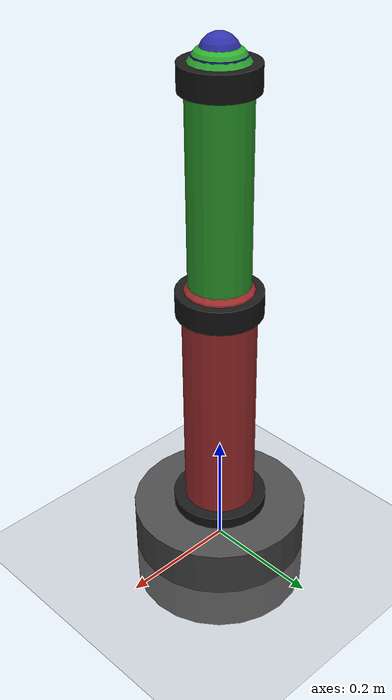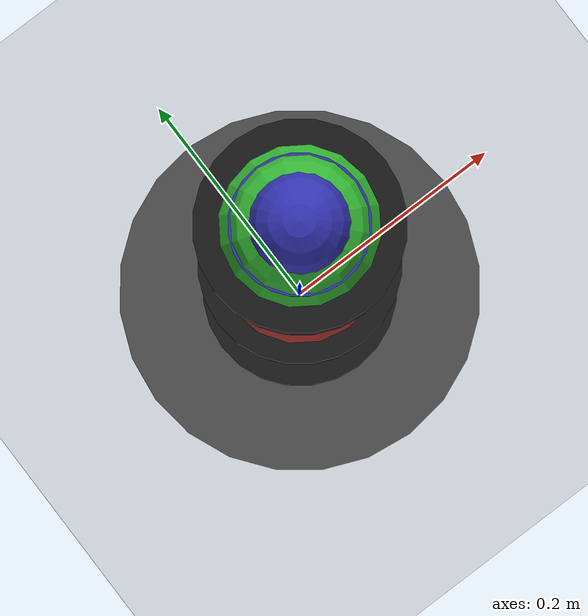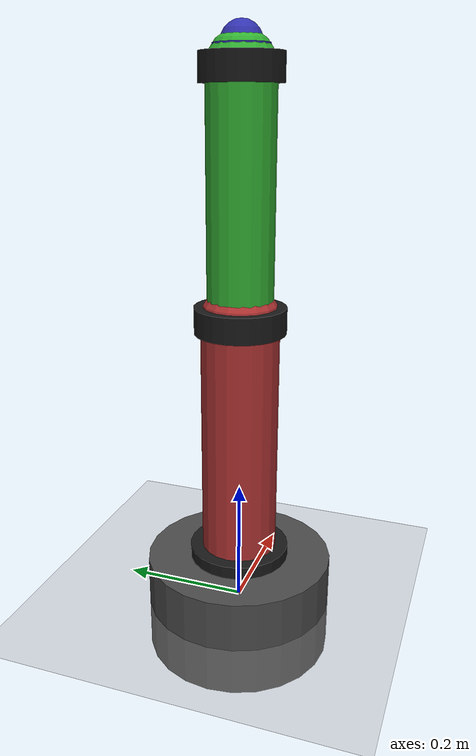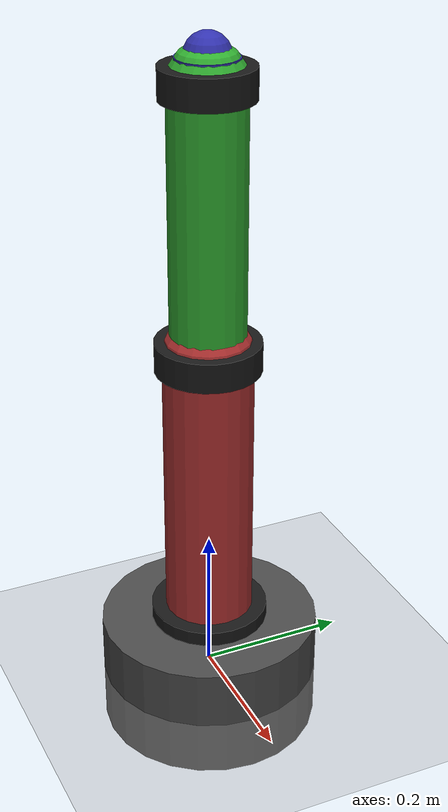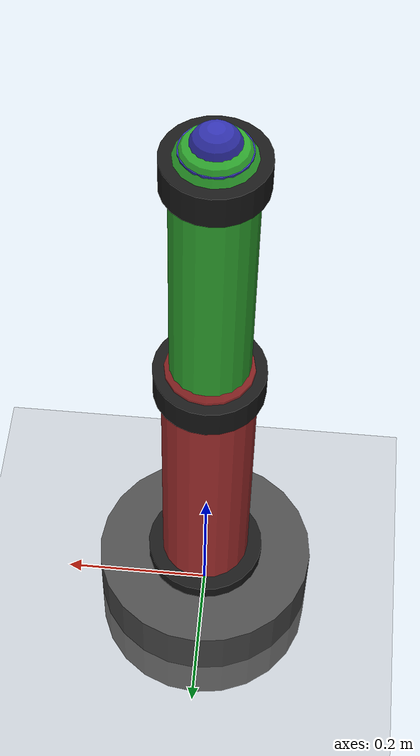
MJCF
<mujoco model="Optimized 3DOF Robotic Arm">
  <compiler angle="radian" inertiafromgeom="true" autolimits="true"/>

  <!-- 基础物理设置（仅保留旧版本兼容属性） -->
  <option timestep="0.005" gravity="0 0 -9.81"/>

  <!-- 视觉设置（极简兼容版） -->
  <visual>
    <global azimuth="135" elevation="-30"/>
  </visual>

  <!-- 简化的资产定义 -->
  <asset>
    <material name="base_metal" rgba="0.3 0.3 0.3 1"/>
    <material name="upper_arm_metal" rgba="0.7 0.2 0.2 1"/>
    <material name="lower_arm_metal" rgba="0.2 0.7 0.2 1"/>
    <material name="ee_metal" rgba="0.2 0.2 0.7 1"/>
    <material name="floor_mat" rgba="0.6 0.6 0.6 1"/>
    <material name="joint_mat" rgba="0.1 0.1 0.1 1"/>
  </asset>

  <!-- 世界体（简化语法，兼容旧版本） -->
  <worldbody>
    <!-- 地面 -->
    <geom name="floor" type="plane" size="5 5 0.1" pos="0 0 0" material="floor_mat" friction="1.0 0.1 0.01"/>

    <!-- 机械臂基座 -->
    <body name="base" pos="0 0 0">
      <geom name="base_geom" type="cylinder" size="0.15 0.08" pos="0 0 0" material="base_metal" mass="2.0"/>
      <joint name="joint1" type="hinge" axis="0 0 1" pos="0 0 0" range="-3.14 3.14" damping="0.5" limited="true"/>
      <geom name="joint1_geom" type="cylinder" size="0.08 0.02" pos="0 0 0.08" material="joint_mat"/>

      <!-- 大臂 -->
      <body name="upper_arm" pos="0 0 0.08">
        <geom name="upper_arm_geom" type="capsule" size="0.06" fromto="0 0 0 0 0 0.4" material="upper_arm_metal" mass="0.8"/>
        <joint name="joint2" type="hinge" axis="1 0 0" pos="0 0 0.4" range="-1.57 1.57" damping="0.4" limited="true"/>
        <geom name="joint2_geom" type="cylinder" size="0.07 0.02" pos="0 0 0.4" material="joint_mat"/>

        <!-- 小臂 -->
        <body name="lower_arm" pos="0 0 0.4">
          <geom name="lower_arm_geom" type="capsule" size="0.05" fromto="0 0 0 0 0 0.35" material="lower_arm_metal" mass="0.5"/>
          <joint name="joint3" type="hinge" axis="1 0 0" pos="0 0 0.35" range="-1.57 1.57" damping="0.3" limited="true"/>
          <geom name="joint3_geom" type="cylinder" size="0.06 0.02" pos="0 0 0.35" material="joint_mat"/>

          <!-- 末端执行器 -->
          <body name="end_effector" pos="0 0 0.35">
            <geom name="ee_base_geom" type="cylinder" size="0.04 0.03" pos="0 0 0" material="ee_metal" mass="0.1"/>
            <geom name="ee_tip_geom" type="sphere" size="0.03" pos="0 0 0.03" material="ee_metal"/>
            <site name="ee_site" pos="0 0 0.03" size="0.01" rgba="1 1 1 1"/>
          </body>
        </body>
      </body>
    </body>
  </worldbody>

  <!-- 简化的控制器（仅保留旧版本支持的属性） -->
  <actuator>
    <position name="act1" joint="joint1" kp="1500"/>
    <position name="act2" joint="joint2" kp="1200"/>
    <position name="act3" joint="joint3" kp="1000"/>
  </actuator>

  <!-- 基础传感器（兼容旧版本） -->
  <sensor>
    <jointpos name="joint1_pos" joint="joint1"/>
    <jointpos name="joint2_pos" joint="joint2"/>
    <jointpos name="joint3_pos" joint="joint3"/>
    <jointvel name="joint1_vel" joint="joint1"/>
    <jointvel name="joint2_vel" joint="joint2"/>
    <jointvel name="joint3_vel" joint="joint3"/>
    <framepos name="ee_pos" objtype="site" objname="ee_site"/>
  </sensor>
</mujoco>
